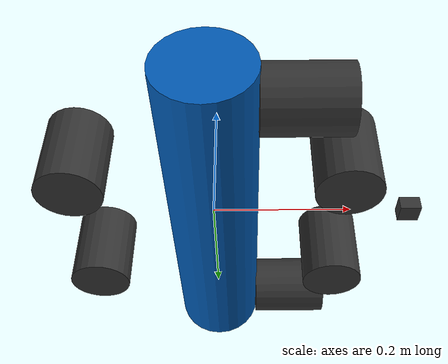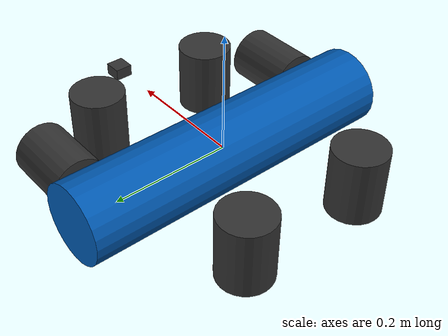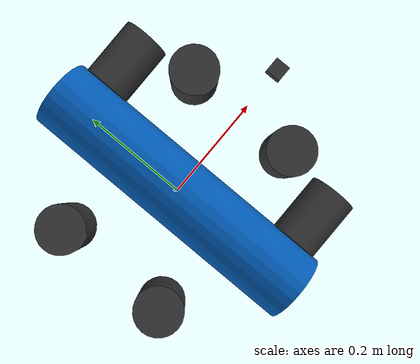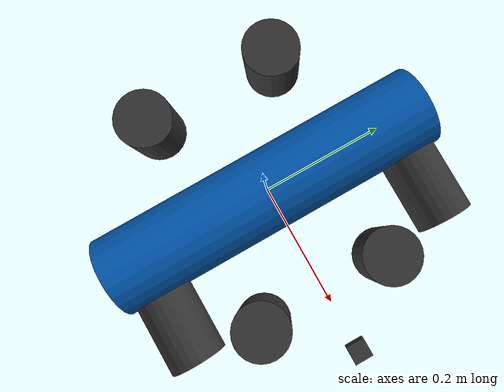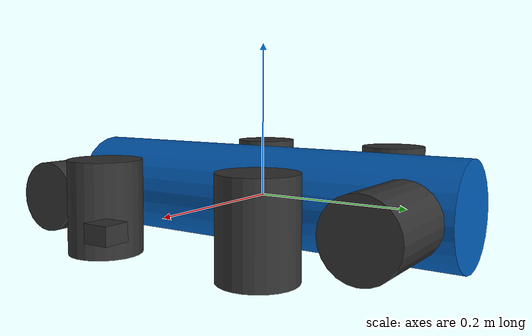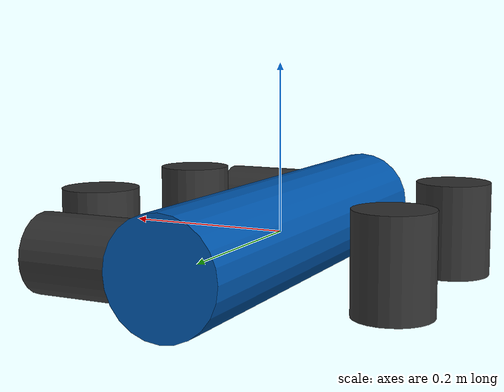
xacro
<?xml version="1.0"?>
<robot name="yavuz_auv" xmlns:xacro="http://www.ros.org/wiki/xacro">

  <xacro:property name="body_length"  value="0.55"/>
  <xacro:property name="body_radius"  value="0.065"/>
  <xacro:property name="body_mass"    value="10.0"/>
  <xacro:property name="thruster_mass"   value="0.344"/>

  <material name="blue">
    <color rgba="0.0 0.35 0.7 1.0"/>
  </material>
  <material name="dark_grey">
    <color rgba="0.2 0.2 0.2 1.0"/>
  </material>
  <material name="white">
    <color rgba="0.9 0.9 0.9 1.0"/>
  </material>

  <!-- Dummy root link (KDL uyumluluğu için) -->
  <link name="base_footprint"/>

  <joint name="base_footprint_joint" type="fixed">
    <parent link="base_footprint"/>
    <child link="base_link"/>
    <origin xyz="0 0 0" rpy="0 0 0"/>
  </joint>

  <!-- ANA GÖVDE -->
  <link name="base_link">
    <inertial>
      <mass value="10.0"/>
      <origin xyz="0 0 0" rpy="0 0 0"/>
      <inertia
        ixx="0.1" ixy="0.0" ixz="0.0"
        iyy="0.4" iyz="0.0"
        izz="0.4"/>
    </inertial>
    <visual>
      <origin xyz="0 0 0" rpy="1.5707 0 0"/>
      <geometry>
        <cylinder radius="0.065" length="0.55"/>
      </geometry>
      <material name="blue"/>
    </visual>
    <collision>
      <origin xyz="0 0 0" rpy="1.5707 0 0"/>
      <geometry>
        <cylinder radius="0.065" length="0.55"/>
      </geometry>
    </collision>
  </link>

  <!-- IMU -->
  <link name="imu_link">
    <inertial>
      <mass value="0.01"/>
      <inertia ixx="0.00001" ixy="0" ixz="0" iyy="0.00001" iyz="0" izz="0.00001"/>
    </inertial>
  </link>
  <joint name="imu_joint" type="fixed">
    <parent link="base_link"/>
    <child link="imu_link"/>
    <origin xyz="0 0 0" rpy="0 0 0"/>
  </joint>

  <!-- KAMERA -->
  <link name="camera_link">
    <inertial>
      <mass value="0.1"/>
      <inertia ixx="0.0001" ixy="0" ixz="0" iyy="0.0001" iyz="0" izz="0.0001"/>
    </inertial>
    <visual>
      <geometry><box size="0.03 0.03 0.02"/></geometry>
      <material name="dark_grey"/>
    </visual>
  </link>
  <joint name="camera_joint" type="fixed">
    <parent link="base_link"/>
    <child link="camera_link"/>
    <origin xyz="0.285 0 0" rpy="0 0 0"/>
  </joint>

  <!-- THRUSTERLAR -->
  <xacro:macro name="thruster_link" params="name">
    <link name="${name}">
      <inertial>
        <mass value="0.344"/>
        <inertia ixx="0.001" ixy="0" ixz="0" iyy="0.001" iyz="0" izz="0.0005"/>
      </inertial>
      <visual>
        <geometry><cylinder radius="0.045" length="0.113"/></geometry>
        <material name="dark_grey"/>
      </visual>
    </link>
  </xacro:macro>

  <xacro:macro name="thruster_joint" params="name parent x y z roll pitch yaw">
    <joint name="${name}_joint" type="fixed">
      <parent link="${parent}"/>
      <child link="${name}"/>
      <origin xyz="${x} ${y} ${z}" rpy="${roll} ${pitch} ${yaw}"/>
    </joint>
  </xacro:macro>

  <xacro:thruster_link name="thruster0"/>
  <xacro:thruster_joint name="thruster0" parent="base_link" x="0.18" y="0.11" z="0.0" roll="0" pitch="0" yaw="2.356"/>

  <xacro:thruster_link name="thruster1"/>
  <xacro:thruster_joint name="thruster1" parent="base_link" x="0.18" y="-0.11" z="0.0" roll="0" pitch="0" yaw="-2.356"/>

  <xacro:thruster_link name="thruster2"/>
  <xacro:thruster_joint name="thruster2" parent="base_link" x="-0.18" y="0.11" z="0.0" roll="0" pitch="0" yaw="0.785"/>

  <xacro:thruster_link name="thruster3"/>
  <xacro:thruster_joint name="thruster3" parent="base_link" x="-0.18" y="-0.11" z="0.0" roll="0" pitch="0" yaw="-0.785"/>

  <xacro:thruster_link name="thruster4"/>
  <xacro:thruster_joint name="thruster4" parent="base_link" x="0.12" y="0.22" z="0.0" roll="0" pitch="1.5707" yaw="0"/>

  <xacro:thruster_link name="thruster5"/>
  <xacro:thruster_joint name="thruster5" parent="base_link" x="0.12" y="-0.22" z="0.0" roll="0" pitch="1.5707" yaw="0"/>

  <!-- GAZEBO SENSÖRLER -->
  <gazebo reference="imu_link">
    <sensor name="imu_sensor" type="imu">
      <always_on>true</always_on>
      <update_rate>100</update_rate>
      <topic>yavuz/imu/data</topic>
      <imu>
        <angular_velocity>
          <x><noise type="gaussian"><mean>0</mean><stddev>0.009</stddev></noise></x>
          <y><noise type="gaussian"><mean>0</mean><stddev>0.009</stddev></noise></y>
          <z><noise type="gaussian"><mean>0</mean><stddev>0.009</stddev></noise></z>
        </angular_velocity>
        <linear_acceleration>
          <x><noise type="gaussian"><mean>0</mean><stddev>0.021</stddev></noise></x>
          <y><noise type="gaussian"><mean>0</mean><stddev>0.021</stddev></noise></y>
          <z><noise type="gaussian"><mean>0</mean><stddev>0.021</stddev></noise></z>
        </linear_acceleration>
      </imu>
    </sensor>
  </gazebo>

</robot>
